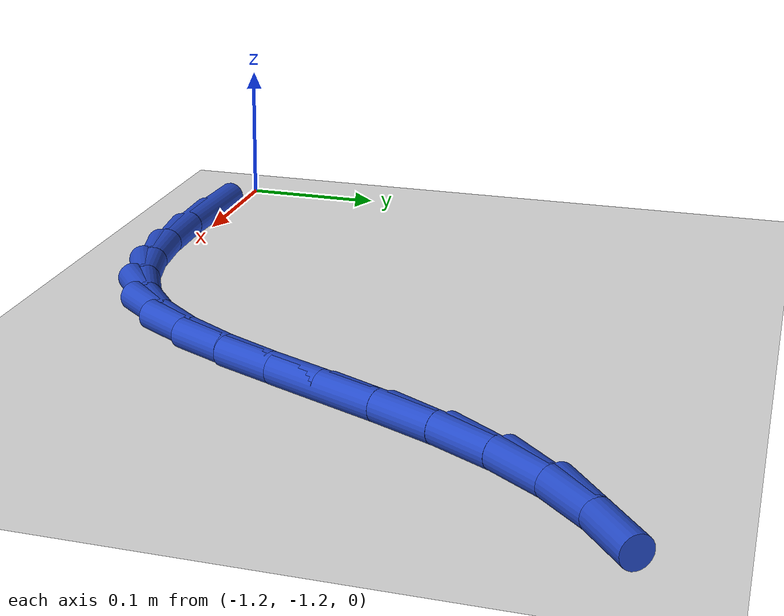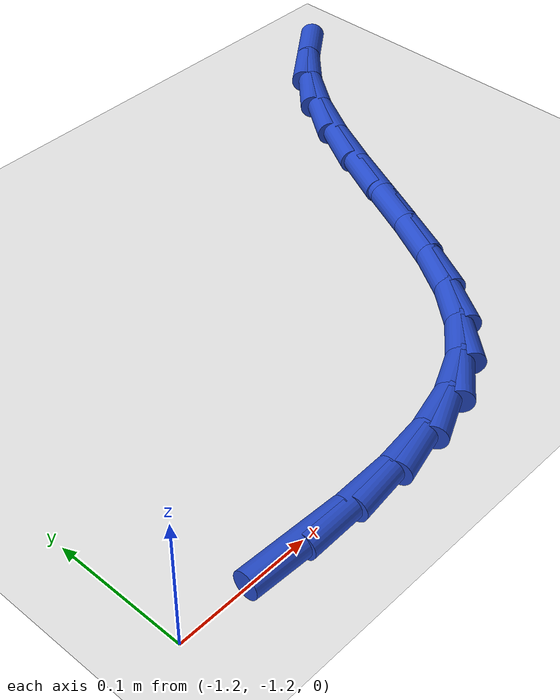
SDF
<sdf version="1.6">
 <world name="default">
  <model name="ground_plane">
   <static>1</static>
   <link name="link">
    <collision name="collision">
     <geometry><plane><normal>0 0 1</normal><size>100 100</size></plane></geometry>
     <surface><friction><ode><mu>100</mu><mu2>50</mu2></ode></friction></surface>
    </collision>
    <visual name="visual">
     <cast_shadows>0</cast_shadows>
     <geometry><plane><normal>0 0 1</normal><size>100 100</size></plane></geometry>
     <material>
      <script><uri>file://media/materials/scripts/gazebo.material</uri><name>Gazebo/WhiteGlow</name></script>
     </material>
    </visual>
   </link>
  </model>
  <model name="line">
   <link name="link_135">
    <pose>-1.112605821257818 -1.2057663182446745 0.01 0 1.57 -0.04729581237379733</pose>
    <collision name="collision">
     <geometry><cylinder><radius>0.01</radius><length>0.08</length></cylinder></geometry>
    </collision>
    <visual name="visual">
     <material>
      <script><name>Gazebo/Blue</name><uri>file://media/materials/scripts/gazebo.material</uri></script>
     </material>
     <geometry><cylinder><radius>0.01</radius><length>0.08</length></cylinder></geometry>
    </visual>
   </link>
   <link name="link_136">
    <pose>-1.0695306809409022 -1.2078051124145524 0.01 0 1.57 0.019776788074542324</pose>
    <collision name="collision">
     <geometry><cylinder><radius>0.01</radius><length>0.08</length></cylinder></geometry>
    </collision>
    <visual name="visual">
     <material>
      <script><name>Gazebo/Blue</name><uri>file://media/materials/scripts/gazebo.material</uri></script>
     </material>
     <geometry><cylinder><radius>0.01</radius><length>0.08</length></cylinder></geometry>
    </visual>
   </link>
   <link name="link_137">
    <pose>-1.0283837730608678 -1.206991252628741 0.01 0 1.57 0.11941531173849282</pose>
    <collision name="collision">
     <geometry><cylinder><radius>0.01</radius><length>0.08</length></cylinder></geometry>
    </collision>
    <visual name="visual">
     <material>
      <script><name>Gazebo/Blue</name><uri>file://media/materials/scripts/gazebo.material</uri></script>
     </material>
     <geometry><cylinder><radius>0.01</radius><length>0.08</length></cylinder></geometry>
    </visual>
   </link>
   <link name="link_138">
    <pose>-0.9897696308836903 -1.20235808884048 0.01 0 1.57 0.25951328449615274</pose>
    <collision name="collision">
     <geometry><cylinder><radius>0.01</radius><length>0.08</length></cylinder></geometry>
    </collision>
    <visual name="visual">
     <material>
      <script><name>Gazebo/Blue</name><uri>file://media/materials/scripts/gazebo.material</uri></script>
     </material>
     <geometry><cylinder><radius>0.01</radius><length>0.08</length></cylinder></geometry>
    </visual>
   </link>
   <link name="link_139">
    <pose>-0.9542927876753451 -1.1929389710030103 0.01 0 1.57 0.445954437083217</pose>
    <collision name="collision">
     <geometry><cylinder><radius>0.01</radius><length>0.08</length></cylinder></geometry>
    </collision>
    <visual name="visual">
     <material>
      <script><name>Gazebo/Blue</name><uri>file://media/materials/scripts/gazebo.material</uri></script>
     </material>
     <geometry><cylinder><radius>0.01</radius><length>0.08</length></cylinder></geometry>
    </visual>
   </link>
   <link name="link_140">
    <pose>-0.9225577767018066 -1.1777672490695719 0.01 0 1.57 0.6721289018717184</pose>
    <collision name="collision">
     <geometry><cylinder><radius>0.01</radius><length>0.08</length></cylinder></geometry>
    </collision>
    <visual name="visual">
     <material>
      <script><name>Gazebo/Blue</name><uri>file://media/materials/scripts/gazebo.material</uri></script>
     </material>
     <geometry><cylinder><radius>0.01</radius><length>0.08</length></cylinder></geometry>
    </visual>
   </link>
   <link name="link_141">
    <pose>-0.8951263337529424 -1.1559393592762097 0.01 0 1.57 0.8779646832072382</pose>
    <collision name="collision">
     <geometry><cylinder><radius>0.01</radius><length>0.08</length></cylinder></geometry>
    </collision>
    <visual name="visual">
     <material>
      <script><name>Gazebo/Blue</name><uri>file://media/materials/scripts/gazebo.material</uri></script>
     </material>
     <geometry><cylinder><radius>0.01</radius><length>0.08</length></cylinder></geometry>
    </visual>
   </link>
   <link name="link_142">
    <pose>-0.871737777608886 -1.1277640343955435 0.01 0 1.57 1.0198970630797484</pose>
    <collision name="collision">
     <geometry><cylinder><radius>0.01</radius><length>0.08</length></cylinder></geometry>
    </collision>
    <visual name="visual">
     <material>
      <script><name>Gazebo/Blue</name><uri>file://media/materials/scripts/gazebo.material</uri></script>
     </material>
     <geometry><cylinder><radius>0.01</radius><length>0.08</length></cylinder></geometry>
    </visual>
   </link>
   <link name="link_143">
    <pose>-0.8513900241494518 -1.09464288363347 0.01 0 1.57 1.1066584346722415</pose>
    <collision name="collision">
     <geometry><cylinder><radius>0.01</radius><length>0.08</length></cylinder></geometry>
    </collision>
    <visual name="visual">
     <material>
      <script><name>Gazebo/Blue</name><uri>file://media/materials/scripts/gazebo.material</uri></script>
     </material>
     <geometry><cylinder><radius>0.01</radius><length>0.08</length></cylinder></geometry>
    </visual>
   </link>
   <link name="link_144">
    <pose>-0.8330544492440786 -1.0580166379094176 0.01 0 1.57 1.149205951659673</pose>
    <collision name="collision">
     <geometry><cylinder><radius>0.01</radius><length>0.08</length></cylinder></geometry>
    </collision>
    <visual name="visual">
     <material>
      <script><name>Gazebo/Blue</name><uri>file://media/materials/scripts/gazebo.material</uri></script>
     </material>
     <geometry><cylinder><radius>0.01</radius><length>0.08</length></cylinder></geometry>
    </visual>
   </link>
   <link name="link_145">
    <pose>-0.8157024287622044 -1.019326028142814 0.01 0 1.57 1.1541854421103086</pose>
    <collision name="collision">
     <geometry><cylinder><radius>0.01</radius><length>0.08</length></cylinder></geometry>
    </collision>
    <visual name="visual">
     <material>
      <script><name>Gazebo/Blue</name><uri>file://media/materials/scripts/gazebo.material</uri></script>
     </material>
     <geometry><cylinder><radius>0.01</radius><length>0.08</length></cylinder></geometry>
    </visual>
   </link>
   <link name="link_146">
    <pose>-0.7983053385732688 -0.980011785253088 0.01 0 1.57 1.1234419998884169</pose>
    <collision name="collision">
     <geometry><cylinder><radius>0.01</radius><length>0.08</length></cylinder></geometry>
    </collision>
    <visual name="visual">
     <material>
      <script><name>Gazebo/Blue</name><uri>file://media/materials/scripts/gazebo.material</uri></script>
     </material>
     <geometry><cylinder><radius>0.01</radius><length>0.08</length></cylinder></geometry>
    </visual>
   </link>
   <link name="link_147">
    <pose>-0.7798345545467101 -0.9415146401596673 0.01 0 1.57 1.05446461782836</pose>
    <collision name="collision">
     <geometry><cylinder><radius>0.01</radius><length>0.08</length></cylinder></geometry>
    </collision>
    <visual name="visual">
     <material>
      <script><name>Gazebo/Blue</name><uri>file://media/materials/scripts/gazebo.material</uri></script>
     </material>
     <geometry><cylinder><radius>0.01</radius><length>0.08</length></cylinder></geometry>
    </visual>
   </link>
   <link name="link_148">
    <pose>-0.759261452551967 -0.9052753237819798 0.01 0 1.57 0.9412449016156341</pose>
    <collision name="collision">
     <geometry><cylinder><radius>0.01</radius><length>0.08</length></cylinder></geometry>
    </collision>
    <visual name="visual">
     <material>
      <script><name>Gazebo/Blue</name><uri>file://media/materials/scripts/gazebo.material</uri></script>
     </material>
     <geometry><cylinder><radius>0.01</radius><length>0.08</length></cylinder></geometry>
    </visual>
   </link>
   <link name="link_149">
    <pose>-0.735557635120808 -0.8727342623935509 0.01 0 1.57 0.7914818682354438</pose>
    <collision name="collision">
     <geometry><cylinder><radius>0.01</radius><length>0.08</length></cylinder></geometry>
    </collision>
    <visual name="visual">
     <material>
      <script><name>Gazebo/Blue</name><uri>file://media/materials/scripts/gazebo.material</uri></script>
     </material>
     <geometry><cylinder><radius>0.01</radius><length>0.08</length></cylinder></geometry>
    </visual>
   </link>
   <link name="link_150">
    <pose>-0.7080349209543081 -0.8448746141239404 0.01 0 1.57 0.6500135046893027</pose>
    <collision name="collision">
     <geometry><cylinder><radius>0.01</radius><length>0.08</length></cylinder></geometry>
    </collision>
    <visual name="visual">
     <material>
      <script><name>Gazebo/Blue</name><uri>file://media/materials/scripts/gazebo.material</uri></script>
     </material>
     <geometry><cylinder><radius>0.01</radius><length>0.08</length></cylinder></geometry>
    </visual>
   </link>
  </model>
 </world>
</sdf>
